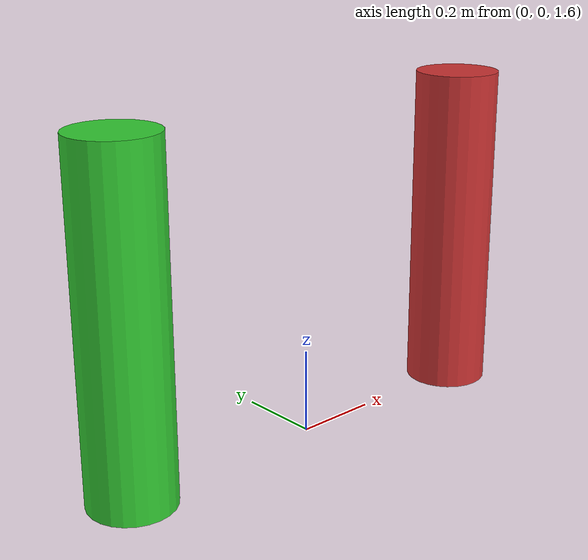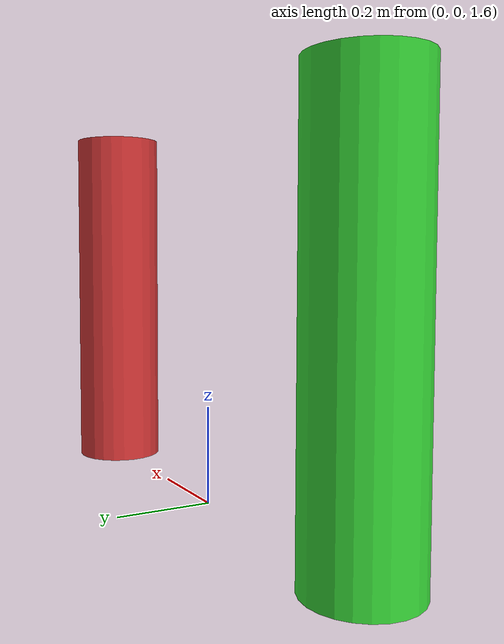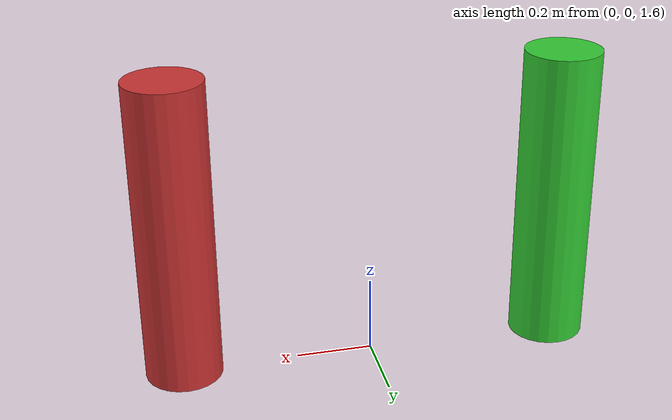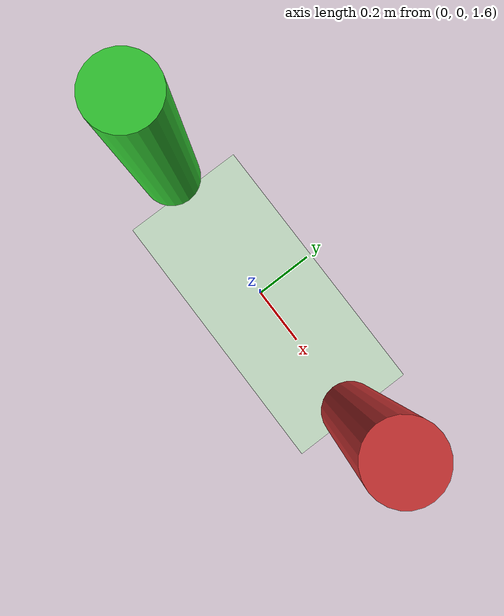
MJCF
<mujoco model="inertial_properties_comparison">
    <compiler angle="degree"/>
    <option gravity="0 0 -9.81" timestep="0.002"/>
    <size nconmax="100"/>

    <worldbody>
        <light pos="0 0 5" dir="0 0 -1" directional="true"/>
        <geom name="ground" type="plane" size="5 5 0.1" rgba="0.8 0.9 0.8 1"/>

        <body name="uniform_cylinder" pos="-0.5 0 2">
            <freejoint/>
            <geom type="cylinder" size="0.1 0.4" rgba="0.2 0.8 0.2 1"/>
        </body>

        <body name="offset_cylinder" pos="0.5 0 2">
            <inertial pos="0 0.2 0.3" mass="2.0" diaginertia="0.05 0.05 0.05"/>
            <freejoint/>
            <geom type="cylinder" size="0.1 0.4" rgba="0.8 0.2 0.2 1"/>
        </body>
    </worldbody>
</mujoco>
